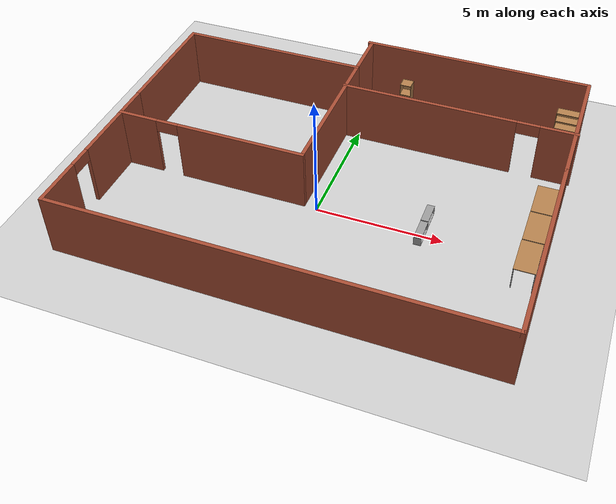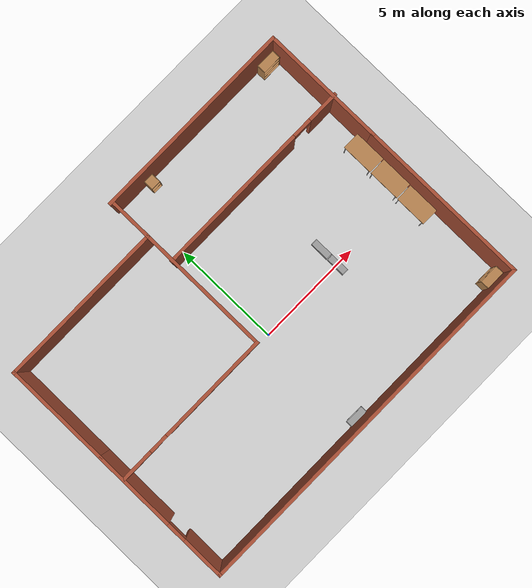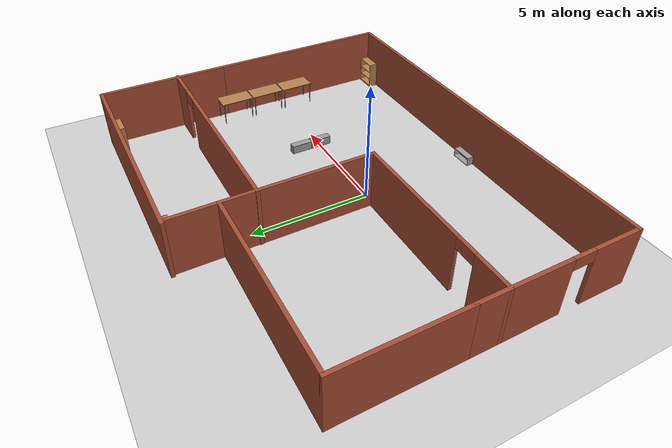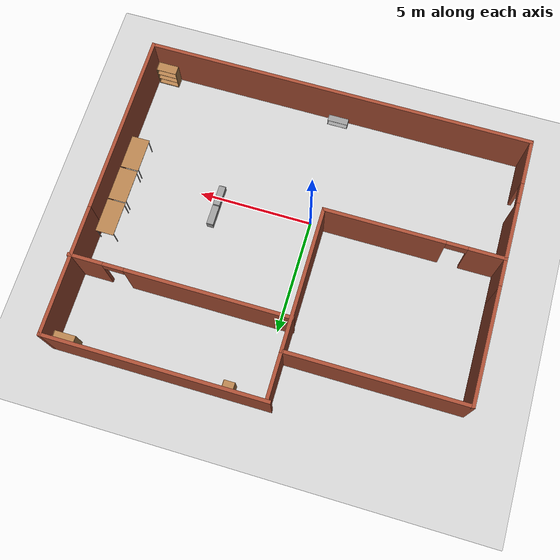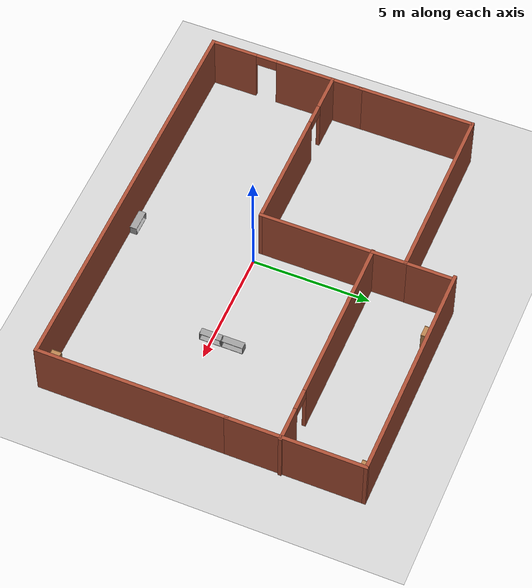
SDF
<sdf version="1.7">
 <world name="default">
  <model name="ground_plane">
   <static>1</static>
   <link name="link">
    <collision name="collision">
     <geometry><plane><normal>0 0 1</normal><size>100 100</size></plane></geometry>
     <surface><friction><ode><mu>100</mu><mu2>50</mu2></ode></friction></surface>
    </collision>
    <visual name="visual">
     <cast_shadows>0</cast_shadows>
     <geometry><plane><normal>0 0 1</normal><size>100 100</size></plane></geometry>
     <material>
      <script><uri>file://media/materials/scripts/gazebo.material</uri><name>Gazebo/Grey</name></script>
     </material>
    </visual>
   </link>
  </model>
  <model name="libraryV3">
   <pose>0.30135 1.47753 0 0 -0 0</pose>
   <link name="Wall_1">
    <pose>-8.45826 -3.425 0 0 -0 -1.5708</pose>
    <visual name="Wall_1_Visual_0">
     <pose>-1.46687 0 1.25 0 -0 0</pose>
     <geometry><box><size>3.81627 0.15 2.5</size></box></geometry>
     <material>
      <script><uri>file://media/materials/scripts/gazebo.material</uri><name>Gazebo/Bricks</name></script>
      <ambient>1 1 1 1</ambient>
     </material>
     <meta><layer>0</layer></meta>
    </visual>
    <collision name="Wall_1_Collision_0">
     <geometry><box><size>3.81627 0.15 2.5</size></box></geometry>
     <pose>-1.46687 0 1.25 0 -0 0</pose>
    </collision>
    <visual name="Wall_1_Visual_1">
     <pose>2.35813 0 1.25 0 -0 0</pose>
     <geometry><box><size>2.03373 0.15 2.5</size></box></geometry>
     <material>
      <script><uri>file://media/materials/scripts/gazebo.material</uri><name>Gazebo/Bricks</name></script>
      <ambient>1 1 1 1</ambient>
     </material>
     <meta><layer>0</layer></meta>
    </visual>
    <collision name="Wall_1_Collision_1">
     <geometry><box><size>2.03373 0.15 2.5</size></box></geometry>
     <pose>2.35813 0 1.25 0 -0 0</pose>
    </collision>
    <visual name="Wall_1_Visual_2">
     <pose>0.891266 0 2.25 0 -0 0</pose>
     <geometry><box><size>0.9 0.15 0.5</size></box></geometry>
     <material>
      <script><uri>file://media/materials/scripts/gazebo.material</uri><name>Gazebo/Bricks</name></script>
      <ambient>1 1 1 1</ambient>
     </material>
     <meta><layer>0</layer></meta>
    </visual>
    <collision name="Wall_1_Collision_2">
     <geometry><box><size>0.9 0.15 0.5</size></box></geometry>
     <pose>0.891266 0 2.25 0 -0 0</pose>
    </collision>
   </link>
   <link name="Wall_11">
    <collision name="Wall_11_Collision">
     <geometry><box><size>5 0.15 2.5</size></box></geometry>
     <pose>0 0 1.25 0 -0 0</pose>
    </collision>
    <visual name="Wall_11_Visual">
     <pose>0 0 1.25 0 -0 0</pose>
     <geometry><box><size>5 0.15 2.5</size></box></geometry>
     <material>
      <script><uri>file://media/materials/scripts/gazebo.material</uri><name>Gazebo/Bricks</name></script>
      <ambient>1 1 1 1</ambient>
     </material>
     <meta><layer>0</layer></meta>
    </visual>
    <pose>-8.45826 2.3 0 0 -0 1.5708</pose>
   </link>
   <link name="Wall_12">
    <collision name="Wall_12_Collision">
     <geometry><box><size>7.75 0.15 2.5</size></box></geometry>
     <pose>0 0 1.25 0 -0 0</pose>
    </collision>
    <visual name="Wall_12_Visual">
     <pose>0 0 1.25 0 -0 0</pose>
     <geometry><box><size>7.75 0.15 2.5</size></box></geometry>
     <material>
      <script><uri>file://media/materials/scripts/gazebo.material</uri><name>Gazebo/Bricks</name></script>
      <ambient>1 1 1 1</ambient>
     </material>
     <meta><layer>0</layer></meta>
    </visual>
    <pose>-4.65826 4.725 0 0 -0 0</pose>
   </link>
   <link name="Wall_14">
    <collision name="Wall_14_Collision">
     <geometry><box><size>2 0.15 2.5</size></box></geometry>
     <pose>0 0 1.25 0 -0 0</pose>
    </collision>
    <visual name="Wall_14_Visual">
     <pose>0 0 1.25 0 -0 0</pose>
     <geometry><box><size>2 0.15 2.5</size></box></geometry>
     <material>
      <script><uri>file://media/materials/scripts/gazebo.material</uri><name>Gazebo/Bricks</name></script>
      <ambient>1 1 1 1</ambient>
     </material>
     <meta><layer>0</layer></meta>
    </visual>
    <pose>-0.858259 5.65 0 0 -0 1.5708</pose>
   </link>
   <link name="Wall_17">
    <collision name="Wall_17_Collision">
     <geometry><box><size>9.5 0.15 2.5</size></box></geometry>
     <pose>0 0 1.25 0 -0 0</pose>
    </collision>
    <visual name="Wall_17_Visual">
     <pose>0 0 1.25 0 -0 0</pose>
     <geometry><box><size>9.5 0.15 2.5</size></box></geometry>
     <material>
      <script><uri>file://media/materials/scripts/gazebo.material</uri><name>Gazebo/Bricks</name></script>
      <ambient>1 1 1 1</ambient>
     </material>
     <meta><layer>0</layer></meta>
    </visual>
    <pose>3.71674 6.725 0 0 -0 3.14159</pose>
   </link>
   <link name="Wall_2">
    <collision name="Wall_2_Collision">
     <geometry><box><size>17 0.15 2.5</size></box></geometry>
     <pose>0 0 1.25 0 -0 0</pose>
    </collision>
    <visual name="Wall_2_Visual">
     <pose>0 0 1.25 0 -0 0</pose>
     <geometry><box><size>17 0.15 2.5</size></box></geometry>
     <material>
      <script><uri>file://media/materials/scripts/gazebo.material</uri><name>Gazebo/Bricks</name></script>
      <ambient>1 1 1 1</ambient>
     </material>
     <meta><layer>0</layer></meta>
    </visual>
    <pose>-0.033259 -6.725 0 0 -0 0</pose>
   </link>
   <link name="Wall_21">
    <collision name="Wall_21_Collision">
     <geometry><box><size>6.25 0.15 2.5</size></box></geometry>
     <pose>0 0 1.25 0 -0 0</pose>
    </collision>
    <visual name="Wall_21_Visual">
     <pose>0 0 1.25 0 -0 0</pose>
     <geometry><box><size>6.25 0.15 2.5</size></box></geometry>
     <material>
      <script><uri>file://media/materials/scripts/gazebo.material</uri><name>Gazebo/Bricks</name></script>
      <ambient>1 1 1 1</ambient>
     </material>
     <meta><layer>0</layer></meta>
    </visual>
    <pose>-0.858259 1.675 0 0 -0 -1.5708</pose>
   </link>
   <link name="Wall_22">
    <pose>-4.65826 -1.375 0 0 -0 3.14159</pose>
    <visual name="Wall_22_Visual_0">
     <pose>-1.26604 0 1.25 0 -0 0</pose>
     <geometry><box><size>5.21792 0.15 2.5</size></box></geometry>
     <material>
      <script><uri>file://media/materials/scripts/gazebo.material</uri><name>Gazebo/Bricks</name></script>
      <ambient>1 1 1 1</ambient>
     </material>
     <meta><layer>0</layer></meta>
    </visual>
    <collision name="Wall_22_Collision_0">
     <geometry><box><size>5.21792 0.15 2.5</size></box></geometry>
     <pose>-1.26604 0 1.25 0 -0 0</pose>
    </collision>
    <visual name="Wall_22_Visual_1">
     <pose>3.05896 0 1.25 0 -0 0</pose>
     <geometry><box><size>1.63208 0.15 2.5</size></box></geometry>
     <material>
      <script><uri>file://media/materials/scripts/gazebo.material</uri><name>Gazebo/Bricks</name></script>
      <ambient>1 1 1 1</ambient>
     </material>
     <meta><layer>0</layer></meta>
    </visual>
    <collision name="Wall_22_Collision_1">
     <geometry><box><size>1.63208 0.15 2.5</size></box></geometry>
     <pose>3.05896 0 1.25 0 -0 0</pose>
    </collision>
    <visual name="Wall_22_Visual_2">
     <pose>1.79292 0 2.25 0 -0 0</pose>
     <geometry><box><size>0.9 0.15 0.5</size></box></geometry>
     <material>
      <script><uri>file://media/materials/scripts/gazebo.material</uri><name>Gazebo/Bricks</name></script>
      <ambient>1 1 1 1</ambient>
     </material>
     <meta><layer>0</layer></meta>
    </visual>
    <collision name="Wall_22_Collision_2">
     <geometry><box><size>0.9 0.15 0.5</size></box></geometry>
     <pose>1.79292 0 2.25 0 -0 0</pose>
    </collision>
   </link>
   <link name="Wall_25">
    <pose>3.78326 3.34459 0 0 -0 0</pose>
    <visual name="Wall_25_Visual_0">
     <pose>-1.20017 0 1.25 0 -0 0</pose>
     <geometry><box><size>7.09966 0.15 2.5</size></box></geometry>
     <material>
      <script><uri>file://media/materials/scripts/gazebo.material</uri><name>Gazebo/Bricks</name></script>
      <ambient>1 1 1 1</ambient>
     </material>
     <meta><layer>0</layer></meta>
    </visual>
    <collision name="Wall_25_Collision_0">
     <geometry><box><size>7.09966 0.15 2.5</size></box></geometry>
     <pose>-1.20017 0 1.25 0 -0 0</pose>
    </collision>
    <visual name="Wall_25_Visual_1">
     <pose>3.99983 0 1.25 0 -0 0</pose>
     <geometry><box><size>1.50035 0.15 2.5</size></box></geometry>
     <material>
      <script><uri>file://media/materials/scripts/gazebo.material</uri><name>Gazebo/Bricks</name></script>
      <ambient>1 1 1 1</ambient>
     </material>
     <meta><layer>0</layer></meta>
    </visual>
    <collision name="Wall_25_Collision_1">
     <geometry><box><size>1.50035 0.15 2.5</size></box></geometry>
     <pose>3.99983 0 1.25 0 -0 0</pose>
    </collision>
    <visual name="Wall_25_Visual_2">
     <pose>2.79966 0 2.25 0 -0 0</pose>
     <geometry><box><size>0.9 0.15 0.5</size></box></geometry>
     <material>
      <script><uri>file://media/materials/scripts/gazebo.material</uri><name>Gazebo/Bricks</name></script>
      <ambient>1 1 1 1</ambient>
     </material>
     <meta><layer>0</layer></meta>
    </visual>
    <collision name="Wall_25_Collision_2">
     <geometry><box><size>0.9 0.15 0.5</size></box></geometry>
     <pose>2.79966 0 2.25 0 -0 0</pose>
    </collision>
   </link>
   <link name="Wall_4">
    <collision name="Wall_4_Collision">
     <geometry><box><size>8 0.15 2.5</size></box></geometry>
     <pose>0 0 1.25 0 -0 0</pose>
    </collision>
    <visual name="Wall_4_Visual">
     <pose>0 0 1.25 0 -0 0</pose>
     <geometry><box><size>8 0.15 2.5</size></box></geometry>
     <material>
      <script><uri>file://media/materials/scripts/gazebo.material</uri><name>Gazebo/Bricks</name></script>
      <ambient>1 1 1 1</ambient>
     </material>
     <meta><layer>0</layer></meta>
    </visual>
    <pose>8.39174 -2.8 0 0 -0 1.5708</pose>
   </link>
   <link name="Wall_6">
    <collision name="Wall_6_Collision">
     <geometry><box><size>5.75 0.15 2.5</size></box></geometry>
     <pose>0 0 1.25 0 -0 0</pose>
    </collision>
    <visual name="Wall_6_Visual">
     <pose>0 0 1.25 0 -0 0</pose>
     <geometry><box><size>5.75 0.15 2.5</size></box></geometry>
     <material>
      <script><uri>file://media/materials/scripts/gazebo.material</uri><name>Gazebo/Bricks</name></script>
      <ambient>1 1 1 1</ambient>
     </material>
     <meta><layer>0</layer></meta>
    </visual>
    <pose>8.39174 3.925 0 0 -0 1.5708</pose>
   </link>
   <static>1</static>
  </model>
  <model name="cabinet_clone_0">
   <static>1</static>
   <link name="cabinet_bottom_plate">
    <inertial>
     <pose>0 0 -1 0 -0 0</pose>
     <inertia><ixx>2.05</ixx><ixy>0</ixy><ixz>0</ixz><iyy>2.05</iyy><iyz>0</iyz><izz>2.05</izz></inertia>
     <mass>25</mass>
    </inertial>
    <collision name="cabinet_bottom_plate_geom">
     <pose>0 0 0.01 0 -0 0</pose>
     <geometry><box><size>0.45 0.45 0.02</size></box></geometry>
    </collision>
    <visual name="cabinet_bottom_plate_geom_visual">
     <pose>0 0 0.01 0 -0 0</pose>
     <geometry><box><size>0.45 0.45 0.02</size></box></geometry>
     <material>
      <script><uri>file://media/materials/scripts/gazebo.material</uri><name>Gazebo/Wood</name></script>
     </material>
    </visual>
    <collision name="cabinet_bottom_plate_geom_cabinet_back_plate">
     <pose>0.235 0 0.51 0 -0 0</pose>
     <geometry><box><size>0.02 0.45 1.02</size></box></geometry>
    </collision>
    <visual name="cabinet_bottom_plate_geom_cabinet_back_plate_visual">
     <pose>0.235 0 0.51 0 -0 0</pose>
     <geometry><box><size>0.02 0.45 1.02</size></box></geometry>
     <material>
      <script><uri>file://media/materials/scripts/gazebo.material</uri><name>Gazebo/Wood</name></script>
     </material>
    </visual>
    <collision name="cabinet_bottom_plate_geom_cabinet_left_plate">
     <pose>0 0.235 0.51 0 -0 0</pose>
     <geometry><box><size>0.45 0.02 1.02</size></box></geometry>
    </collision>
    <visual name="cabinet_bottom_plate_geom_cabinet_left_plate_visual">
     <pose>0 0.235 0.51 0 -0 0</pose>
     <geometry><box><size>0.45 0.02 1.02</size></box></geometry>
     <material>
      <script><uri>file://media/materials/scripts/gazebo.material</uri><name>Gazebo/Wood</name></script>
     </material>
    </visual>
    <collision name="cabinet_bottom_plate_geom_cabinet_middle_plate">
     <pose>0 0 0.51 0 -0 0</pose>
     <geometry><box><size>0.45 0.45 0.02</size></box></geometry>
    </collision>
    <visual name="cabinet_bottom_plate_geom_cabinet_middle_plate_visual">
     <pose>0 0 0.51 0 -0 0</pose>
     <geometry><box><size>0.45 0.45 0.02</size></box></geometry>
     <material>
      <script><uri>file://media/materials/scripts/gazebo.material</uri><name>Gazebo/Wood</name></script>
     </material>
    </visual>
    <collision name="cabinet_bottom_plate_geom_cabinet_right_plate">
     <pose>0 -0.235 0.51 0 -0 0</pose>
     <geometry><box><size>0.45 0.02 1.02</size></box></geometry>
    </collision>
    <visual name="cabinet_bottom_plate_geom_cabinet_right_plate_visual">
     <pose>0 -0.235 0.51 0 -0 0</pose>
     <geometry><box><size>0.45 0.02 1.02</size></box></geometry>
     <material>
      <script><uri>file://media/materials/scripts/gazebo.material</uri><name>Gazebo/Wood</name></script>
     </material>
    </visual>
    <collision name="cabinet_bottom_plate_geom_cabinet_top_plate">
     <pose>0 0 1.01 0 -0 0</pose>
     <geometry><box><size>0.45 0.45 0.02</size></box></geometry>
    </collision>
    <visual name="cabinet_bottom_plate_geom_cabinet_top_plate_visual">
     <pose>0 0 1.01 0 -0 0</pose>
     <geometry><box><size>0.45 0.45 0.02</size></box></geometry>
     <material>
      <script><uri>file://media/materials/scripts/gazebo.material</uri><name>Gazebo/Wood</name></script>
     </material>
    </visual>
   </link>
   <pose>1.18529 7.88915 0 0 -0 1.5679</pose>
  </model>
  <model name="bookshelf_0">
   <static>1</static>
   <link name="link">
    <inertial><mass>1</mass></inertial>
    <collision name="back">
     <pose>0 0.005 0.6 0 -0 0</pose>
     <geometry><box><size>0.9 0.01 1.2</size></box></geometry>
    </collision>
    <visual name="visual1">
     <pose>0 0.005 0.6 0 -0 0</pose>
     <geometry><box><size>0.9 0.01 1.2</size></box></geometry>
     <material>
      <script><uri>file://media/materials/scripts/gazebo.material</uri><name>Gazebo/Wood</name></script>
     </material>
    </visual>
    <collision name="left_side">
     <pose>0.45 -0.195 0.6 0 -0 0</pose>
     <geometry><box><size>0.02 0.4 1.2</size></box></geometry>
    </collision>
    <visual name="visual2">
     <pose>0.45 -0.195 0.6 0 -0 0</pose>
     <geometry><box><size>0.02 0.4 1.2</size></box></geometry>
     <material>
      <script><uri>file://media/materials/scripts/gazebo.material</uri><name>Gazebo/Wood</name></script>
     </material>
    </visual>
    <collision name="right_side">
     <pose>-0.45 -0.195 0.6 0 -0 0</pose>
     <geometry><box><size>0.02 0.4 1.2</size></box></geometry>
    </collision>
    <visual name="visual3">
     <pose>-0.45 -0.195 0.6 0 -0 0</pose>
     <geometry><box><size>0.02 0.4 1.2</size></box></geometry>
     <material>
      <script><uri>file://media/materials/scripts/gazebo.material</uri><name>Gazebo/Wood</name></script>
     </material>
    </visual>
    <collision name="bottom">
     <pose>0 -0.195 0.03 0 -0 0</pose>
     <geometry><box><size>0.88 0.4 0.06</size></box></geometry>
    </collision>
    <visual name="visual4">
     <pose>0 -0.195 0.03 0 -0 0</pose>
     <geometry><box><size>0.88 0.4 0.06</size></box></geometry>
     <material>
      <script><uri>file://media/materials/scripts/gazebo.material</uri><name>Gazebo/Wood</name></script>
     </material>
    </visual>
    <collision name="top">
     <pose>0 -0.195 1.19 0 -0 0</pose>
     <geometry><box><size>0.88 0.4 0.02</size></box></geometry>
    </collision>
    <visual name="visual5">
     <pose>0 -0.195 1.19 0 -0 0</pose>
     <geometry><box><size>0.88 0.4 0.02</size></box></geometry>
     <material>
      <script><uri>file://media/materials/scripts/gazebo.material</uri><name>Gazebo/Wood</name></script>
     </material>
    </visual>
    <collision name="low_shelf">
     <pose>0 -0.195 0.43 0 -0 0</pose>
     <geometry><box><size>0.88 0.4 0.02</size></box></geometry>
    </collision>
    <visual name="visual6">
     <pose>0 -0.195 0.43 0 -0 0</pose>
     <geometry><box><size>0.88 0.4 0.02</size></box></geometry>
     <material>
      <script><uri>file://media/materials/scripts/gazebo.material</uri><name>Gazebo/Wood</name></script>
     </material>
    </visual>
    <collision name="high_shelf">
     <pose>0 -0.195 0.8 0 -0 0</pose>
     <geometry><box><size>0.88 0.4 0.02</size></box></geometry>
    </collision>
    <visual name="visual7">
     <pose>0 -0.195 0.8 0 -0 0</pose>
     <geometry><box><size>0.88 0.4 0.02</size></box></geometry>
     <material>
      <script><uri>file://media/materials/scripts/gazebo.material</uri><name>Gazebo/Wood</name></script>
     </material>
    </visual>
   </link>
   <pose>8.13394 8.0941 0 0 -0 0</pose>
  </model>
  <model name="bookshelf_2">
   <static>1</static>
   <link name="link">
    <inertial><mass>1</mass></inertial>
    <collision name="back">
     <pose>0 0.005 0.6 0 -0 0</pose>
     <geometry><box><size>0.9 0.01 1.2</size></box></geometry>
    </collision>
    <visual name="visual1">
     <pose>0 0.005 0.6 0 -0 0</pose>
     <geometry><box><size>0.9 0.01 1.2</size></box></geometry>
     <material>
      <script><uri>file://media/materials/scripts/gazebo.material</uri><name>Gazebo/Wood</name></script>
     </material>
    </visual>
    <collision name="left_side">
     <pose>0.45 -0.195 0.6 0 -0 0</pose>
     <geometry><box><size>0.02 0.4 1.2</size></box></geometry>
    </collision>
    <visual name="visual2">
     <pose>0.45 -0.195 0.6 0 -0 0</pose>
     <geometry><box><size>0.02 0.4 1.2</size></box></geometry>
     <material>
      <script><uri>file://media/materials/scripts/gazebo.material</uri><name>Gazebo/Wood</name></script>
     </material>
    </visual>
    <collision name="right_side">
     <pose>-0.45 -0.195 0.6 0 -0 0</pose>
     <geometry><box><size>0.02 0.4 1.2</size></box></geometry>
    </collision>
    <visual name="visual3">
     <pose>-0.45 -0.195 0.6 0 -0 0</pose>
     <geometry><box><size>0.02 0.4 1.2</size></box></geometry>
     <material>
      <script><uri>file://media/materials/scripts/gazebo.material</uri><name>Gazebo/Wood</name></script>
     </material>
    </visual>
    <collision name="bottom">
     <pose>0 -0.195 0.03 0 -0 0</pose>
     <geometry><box><size>0.88 0.4 0.06</size></box></geometry>
    </collision>
    <visual name="visual4">
     <pose>0 -0.195 0.03 0 -0 0</pose>
     <geometry><box><size>0.88 0.4 0.06</size></box></geometry>
     <material>
      <script><uri>file://media/materials/scripts/gazebo.material</uri><name>Gazebo/Wood</name></script>
     </material>
    </visual>
    <collision name="top">
     <pose>0 -0.195 1.19 0 -0 0</pose>
     <geometry><box><size>0.88 0.4 0.02</size></box></geometry>
    </collision>
    <visual name="visual5">
     <pose>0 -0.195 1.19 0 -0 0</pose>
     <geometry><box><size>0.88 0.4 0.02</size></box></geometry>
     <material>
      <script><uri>file://media/materials/scripts/gazebo.material</uri><name>Gazebo/Wood</name></script>
     </material>
    </visual>
    <collision name="low_shelf">
     <pose>0 -0.195 0.43 0 -0 0</pose>
     <geometry><box><size>0.88 0.4 0.02</size></box></geometry>
    </collision>
    <visual name="visual6">
     <pose>0 -0.195 0.43 0 -0 0</pose>
     <geometry><box><size>0.88 0.4 0.02</size></box></geometry>
     <material>
      <script><uri>file://media/materials/scripts/gazebo.material</uri><name>Gazebo/Wood</name></script>
     </material>
    </visual>
    <collision name="high_shelf">
     <pose>0 -0.195 0.8 0 -0 0</pose>
     <geometry><box><size>0.88 0.4 0.02</size></box></geometry>
    </collision>
    <visual name="visual7">
     <pose>0 -0.195 0.8 0 -0 0</pose>
     <geometry><box><size>0.88 0.4 0.02</size></box></geometry>
     <material>
      <script><uri>file://media/materials/scripts/gazebo.material</uri><name>Gazebo/Wood</name></script>
     </material>
    </visual>
   </link>
   <pose>8.12429 -5.14453 0 0 -0 3.14119</pose>
  </model>
  <model name="table">
   <static>1</static>
   <link name="link">
    <collision name="surface">
     <pose>0 0 1 0 -0 0</pose>
     <geometry><box><size>1.5 0.8 0.03</size></box></geometry>
     <surface><friction><ode><mu>0.6</mu><mu2>0.6</mu2></ode></friction></surface>
    </collision>
    <visual name="visual1">
     <pose>0 0 1 0 -0 0</pose>
     <geometry><box><size>1.5 0.8 0.03</size></box></geometry>
     <material>
      <script><uri>file://media/materials/scripts/gazebo.material</uri><name>Gazebo/Wood</name></script>
     </material>
    </visual>
    <collision name="front_left_leg">
     <pose>0.68 0.38 0.5 0 -0 0</pose>
     <geometry><cylinder><radius>0.02</radius><length>1</length></cylinder></geometry>
    </collision>
    <visual name="front_left_leg">
     <pose>0.68 0.38 0.5 0 -0 0</pose>
     <geometry><cylinder><radius>0.02</radius><length>1</length></cylinder></geometry>
     <material>
      <script><uri>file://media/materials/scripts/gazebo.material</uri><name>Gazebo/Grey</name></script>
     </material>
    </visual>
    <collision name="front_right_leg">
     <pose>0.68 -0.38 0.5 0 -0 0</pose>
     <geometry><cylinder><radius>0.02</radius><length>1</length></cylinder></geometry>
    </collision>
    <visual name="front_right_leg">
     <pose>0.68 -0.38 0.5 0 -0 0</pose>
     <geometry><cylinder><radius>0.02</radius><length>1</length></cylinder></geometry>
     <material>
      <script><uri>file://media/materials/scripts/gazebo.material</uri><name>Gazebo/Grey</name></script>
     </material>
    </visual>
    <collision name="back_right_leg">
     <pose>-0.68 -0.38 0.5 0 -0 0</pose>
     <geometry><cylinder><radius>0.02</radius><length>1</length></cylinder></geometry>
    </collision>
    <visual name="back_right_leg">
     <pose>-0.68 -0.38 0.5 0 -0 0</pose>
     <geometry><cylinder><radius>0.02</radius><length>1</length></cylinder></geometry>
     <material>
      <script><uri>file://media/materials/scripts/gazebo.material</uri><name>Gazebo/Grey</name></script>
     </material>
    </visual>
    <collision name="back_left_leg">
     <pose>-0.68 0.38 0.5 0 -0 0</pose>
     <geometry><cylinder><radius>0.02</radius><length>1</length></cylinder></geometry>
    </collision>
    <visual name="back_left_leg">
     <pose>-0.68 0.38 0.5 0 -0 0</pose>
     <geometry><cylinder><radius>0.02</radius><length>1</length></cylinder></geometry>
     <material>
      <script><uri>file://media/materials/scripts/gazebo.material</uri><name>Gazebo/Grey</name></script>
     </material>
    </visual>
   </link>
   <pose>8.17833 2.42694 0 0 -0 1.57073</pose>
  </model>
  <model name="table_clone">
   <static>1</static>
   <link name="link">
    <collision name="surface">
     <pose>0 0 1 0 -0 0</pose>
     <geometry><box><size>1.5 0.8 0.03</size></box></geometry>
     <surface><friction><ode><mu>0.6</mu><mu2>0.6</mu2></ode></friction></surface>
    </collision>
    <visual name="visual1">
     <pose>0 0 1 0 -0 0</pose>
     <geometry><box><size>1.5 0.8 0.03</size></box></geometry>
     <material>
      <script><uri>file://media/materials/scripts/gazebo.material</uri><name>Gazebo/Wood</name></script>
     </material>
    </visual>
    <collision name="front_left_leg">
     <pose>0.68 0.38 0.5 0 -0 0</pose>
     <geometry><cylinder><radius>0.02</radius><length>1</length></cylinder></geometry>
    </collision>
    <visual name="front_left_leg">
     <pose>0.68 0.38 0.5 0 -0 0</pose>
     <geometry><cylinder><radius>0.02</radius><length>1</length></cylinder></geometry>
     <material>
      <script><uri>file://media/materials/scripts/gazebo.material</uri><name>Gazebo/Grey</name></script>
     </material>
    </visual>
    <collision name="front_right_leg">
     <pose>0.68 -0.38 0.5 0 -0 0</pose>
     <geometry><cylinder><radius>0.02</radius><length>1</length></cylinder></geometry>
    </collision>
    <visual name="front_right_leg">
     <pose>0.68 -0.38 0.5 0 -0 0</pose>
     <geometry><cylinder><radius>0.02</radius><length>1</length></cylinder></geometry>
     <material>
      <script><uri>file://media/materials/scripts/gazebo.material</uri><name>Gazebo/Grey</name></script>
     </material>
    </visual>
    <collision name="back_right_leg">
     <pose>-0.68 -0.38 0.5 0 -0 0</pose>
     <geometry><cylinder><radius>0.02</radius><length>1</length></cylinder></geometry>
    </collision>
    <visual name="back_right_leg">
     <pose>-0.68 -0.38 0.5 0 -0 0</pose>
     <geometry><cylinder><radius>0.02</radius><length>1</length></cylinder></geometry>
     <material>
      <script><uri>file://media/materials/scripts/gazebo.material</uri><name>Gazebo/Grey</name></script>
     </material>
    </visual>
    <collision name="back_left_leg">
     <pose>-0.68 0.38 0.5 0 -0 0</pose>
     <geometry><cylinder><radius>0.02</radius><length>1</length></cylinder></geometry>
    </collision>
    <visual name="back_left_leg">
     <pose>-0.68 0.38 0.5 0 -0 0</pose>
     <geometry><cylinder><radius>0.02</radius><length>1</length></cylinder></geometry>
     <material>
      <script><uri>file://media/materials/scripts/gazebo.material</uri><name>Gazebo/Grey</name></script>
     </material>
    </visual>
   </link>
   <pose>8.17555 0.889376 0 0 -0 1.57073</pose>
  </model>
  <model name="table_clone_0">
   <static>1</static>
   <link name="link">
    <collision name="surface">
     <pose>0 0 1 0 -0 0</pose>
     <geometry><box><size>1.5 0.8 0.03</size></box></geometry>
     <surface><friction><ode><mu>0.6</mu><mu2>0.6</mu2></ode></friction></surface>
    </collision>
    <visual name="visual1">
     <pose>0 0 1 0 -0 0</pose>
     <geometry><box><size>1.5 0.8 0.03</size></box></geometry>
     <material>
      <script><uri>file://media/materials/scripts/gazebo.material</uri><name>Gazebo/Wood</name></script>
     </material>
    </visual>
    <collision name="front_left_leg">
     <pose>0.68 0.38 0.5 0 -0 0</pose>
     <geometry><cylinder><radius>0.02</radius><length>1</length></cylinder></geometry>
    </collision>
    <visual name="front_left_leg">
     <pose>0.68 0.38 0.5 0 -0 0</pose>
     <geometry><cylinder><radius>0.02</radius><length>1</length></cylinder></geometry>
     <material>
      <script><uri>file://media/materials/scripts/gazebo.material</uri><name>Gazebo/Grey</name></script>
     </material>
    </visual>
    <collision name="front_right_leg">
     <pose>0.68 -0.38 0.5 0 -0 0</pose>
     <geometry><cylinder><radius>0.02</radius><length>1</length></cylinder></geometry>
    </collision>
    <visual name="front_right_leg">
     <pose>0.68 -0.38 0.5 0 -0 0</pose>
     <geometry><cylinder><radius>0.02</radius><length>1</length></cylinder></geometry>
     <material>
      <script><uri>file://media/materials/scripts/gazebo.material</uri><name>Gazebo/Grey</name></script>
     </material>
    </visual>
    <collision name="back_right_leg">
     <pose>-0.68 -0.38 0.5 0 -0 0</pose>
     <geometry><cylinder><radius>0.02</radius><length>1</length></cylinder></geometry>
    </collision>
    <visual name="back_right_leg">
     <pose>-0.68 -0.38 0.5 0 -0 0</pose>
     <geometry><cylinder><radius>0.02</radius><length>1</length></cylinder></geometry>
     <material>
      <script><uri>file://media/materials/scripts/gazebo.material</uri><name>Gazebo/Grey</name></script>
     </material>
    </visual>
    <collision name="back_left_leg">
     <pose>-0.68 0.38 0.5 0 -0 0</pose>
     <geometry><cylinder><radius>0.02</radius><length>1</length></cylinder></geometry>
    </collision>
    <visual name="back_left_leg">
     <pose>-0.68 0.38 0.5 0 -0 0</pose>
     <geometry><cylinder><radius>0.02</radius><length>1</length></cylinder></geometry>
     <material>
      <script><uri>file://media/materials/scripts/gazebo.material</uri><name>Gazebo/Grey</name></script>
     </material>
    </visual>
   </link>
   <pose>8.16358 -0.65173 0 0 -0 1.57073</pose>
  </model>
  <model name="Wall_Cabinet_36x15W">
   <link name="Wall_0">
    <pose>0 0 0.01 0 -0 0</pose>
    <inertial>
     <mass>1.9796</mass>
     <inertia><ixx>0.0145</ixx><iyy>0.1511</iyy><izz>0.1367</izz><ixy>0</ixy><ixz>0</ixz><iyz>0</iyz></inertia>
    </inertial>
    <collision name="Wall_0_Collision"><geometry><box><size>0.91 0.296 0.02</size></box></geometry></collision>
    <visual name="Wall_0_Visual">
     <geometry><box><size>0.91 0.296 0.02</size></box></geometry>
     <material>
      <script><uri>file://media/materials/scripts/gazebo.material</uri><name>Gazebo/Grey</name></script>
      <ambient>1 1 1 1</ambient>
     </material>
    </visual>
   </link>
   <joint name="0_2" type="fixed">
    <pose>-0.455 0 0 0 -0 0</pose>
    <parent>Wall_2</parent>
    <child>Wall_0</child>
    <axis><xyz>0 0 1</xyz><limit><lower>-1e+16</lower><upper>1e+16</upper></limit></axis>
   </joint>
   <joint name="0_4" type="fixed">
    <pose>0.455 0 0 0 -0 0</pose>
    <parent>Wall_4</parent>
    <child>Wall_0</child>
    <axis><xyz>0 0 1</xyz><limit><lower>-1e+16</lower><upper>1e+16</upper></limit></axis>
   </joint>
   <joint name="0_8" type="fixed">
    <pose>0 -0.148 0 0 -0 0</pose>
    <parent>Wall_8</parent>
    <child>Wall_0</child>
    <axis><xyz>0 0 1</xyz><limit><lower>-1e+16</lower><upper>1e+16</upper></limit></axis>
   </joint>
   <link name="Wall_2">
    <pose>-0.445 0 0.192 0 -0 0</pose>
    <inertial>
     <mass>0.8353</mass>
     <inertia><ixx>0.0061</ixx><iyy>0.0164</iyy><izz>0.0103</izz><ixy>0</ixy><ixz>0</ixz><iyz>0</iyz></inertia>
    </inertial>
    <collision name="Wall_2_Collision"><geometry><box><size>0.02 0.296 0.384</size></box></geometry></collision>
    <visual name="Wall_2_Visual">
     <geometry><box><size>0.02 0.296 0.384</size></box></geometry>
     <material>
      <script><uri>file://media/materials/scripts/gazebo.material</uri><name>Gazebo/Grey</name></script>
      <ambient>1 1 1 1</ambient>
     </material>
    </visual>
   </link>
   <link name="Wall_4">
    <pose>0.445 0 0.192 0 -0 0</pose>
    <inertial>
     <mass>0.8353</mass>
     <inertia><ixx>0.0061</ixx><iyy>0.0164</iyy><izz>0.0103</izz><ixy>0</ixy><ixz>0</ixz><iyz>0</iyz></inertia>
    </inertial>
    <collision name="Wall_4_Collision"><geometry><box><size>0.02 0.296 0.384</size></box></geometry></collision>
    <visual name="Wall_4_Visual">
     <geometry><box><size>0.02 0.296 0.384</size></box></geometry>
     <material>
      <script><uri>file://media/materials/scripts/gazebo.material</uri><name>Gazebo/Grey</name></script>
      <ambient>1 1 1 1</ambient>
     </material>
    </visual>
   </link>
   <link name="Wall_6">
    <pose>0 0 0.374 0 -0 0</pose>
    <inertial>
     <mass>1.9796</mass>
     <inertia><ixx>0.0145</ixx><iyy>0.1511</iyy><izz>0.1367</izz><ixy>0</ixy><ixz>0</ixz><iyz>0</iyz></inertia>
    </inertial>
    <collision name="Wall_6_Collision"><geometry><box><size>0.91 0.296 0.02</size></box></geometry></collision>
    <visual name="Wall_6_Visual">
     <geometry><box><size>0.91 0.296 0.02</size></box></geometry>
     <material>
      <script><uri>file://media/materials/scripts/gazebo.material</uri><name>Gazebo/Grey</name></script>
      <ambient>1 1 1 1</ambient>
     </material>
    </visual>
   </link>
   <joint name="6_2" type="fixed">
    <pose>-0.455 0 0 0 -0 0</pose>
    <parent>Wall_2</parent>
    <child>Wall_6</child>
    <axis><xyz>0 0 1</xyz><limit><lower>-1e+16</lower><upper>1e+16</upper></limit></axis>
   </joint>
   <joint name="6_4" type="fixed">
    <pose>0.455 0 0 0 -0 0</pose>
    <parent>Wall_4</parent>
    <child>Wall_6</child>
    <axis><xyz>0 0 1</xyz><limit><lower>-1e+16</lower><upper>1e+16</upper></limit></axis>
   </joint>
   <joint name="6_8" type="fixed">
    <pose>0 -0.148 0 0 -0 0</pose>
    <parent>Wall_8</parent>
    <child>Wall_6</child>
    <axis><xyz>0 0 1</xyz><limit><lower>-1e+16</lower><upper>1e+16</upper></limit></axis>
   </joint>
   <link name="Wall_8">
    <pose>0 -0.138 0.19 0 -0 0</pose>
    <inertial>
     <mass>2.5302</mass>
     <inertia><ixx>0.0305</ixx><iyy>0.1732</iyy><izz>0.2035</izz><ixy>0</ixy><ixz>0</ixz><iyz>0</iyz></inertia>
    </inertial>
    <collision name="Wall_8_Collision"><geometry><box><size>0.906 0.02 0.38</size></box></geometry></collision>
    <visual name="Wall_8_Visual">
     <geometry><box><size>0.906 0.02 0.38</size></box></geometry>
     <material>
      <script><uri>file://media/materials/scripts/gazebo.material</uri><name>Gazebo/Grey</name></script>
      <ambient>1 1 1 1</ambient>
     </material>
    </visual>
   </link>
   <joint name="8_2" type="fixed">
    <pose>-0.453 0 0 0 -0 0</pose>
    <parent>Wall_2</parent>
    <child>Wall_8</child>
    <axis><xyz>0 1 0</xyz><limit><lower>-1e+16</lower><upper>1e+16</upper></limit></axis>
   </joint>
   <joint name="8_4" type="fixed">
    <pose>0.453 0 0 0 -0 0</pose>
    <parent>Wall_4</parent>
    <child>Wall_8</child>
    <axis><xyz>0 1 0</xyz><limit><lower>-1e+16</lower><upper>1e+16</upper></limit></axis>
   </joint>
   <static>1</static>
   <pose>0.124103 -5.01216 0 0 -0 0</pose>
  </model>
  <model name="Wall_Cabinet_36x15W_0">
   <link name="Wall_0">
    <pose>0 0 0.01 0 -0 0</pose>
    <inertial>
     <mass>1.9796</mass>
     <inertia><ixx>0.0145</ixx><iyy>0.1511</iyy><izz>0.1367</izz><ixy>0</ixy><ixz>0</ixz><iyz>0</iyz></inertia>
    </inertial>
    <collision name="Wall_0_Collision"><geometry><box><size>0.91 0.296 0.02</size></box></geometry></collision>
    <visual name="Wall_0_Visual">
     <geometry><box><size>0.91 0.296 0.02</size></box></geometry>
     <material>
      <script><uri>file://media/materials/scripts/gazebo.material</uri><name>Gazebo/Grey</name></script>
      <ambient>1 1 1 1</ambient>
     </material>
    </visual>
   </link>
   <joint name="0_2" type="fixed">
    <pose>-0.455 0 0 0 -0 0</pose>
    <parent>Wall_2</parent>
    <child>Wall_0</child>
    <axis><xyz>0 0 1</xyz><limit><lower>-1e+16</lower><upper>1e+16</upper></limit></axis>
   </joint>
   <joint name="0_4" type="fixed">
    <pose>0.455 0 0 0 -0 0</pose>
    <parent>Wall_4</parent>
    <child>Wall_0</child>
    <axis><xyz>0 0 1</xyz><limit><lower>-1e+16</lower><upper>1e+16</upper></limit></axis>
   </joint>
   <joint name="0_8" type="fixed">
    <pose>0 -0.148 0 0 -0 0</pose>
    <parent>Wall_8</parent>
    <child>Wall_0</child>
    <axis><xyz>0 0 1</xyz><limit><lower>-1e+16</lower><upper>1e+16</upper></limit></axis>
   </joint>
   <link name="Wall_2">
    <pose>-0.445 0 0.192 0 -0 0</pose>
    <inertial>
     <mass>0.8353</mass>
     <inertia><ixx>0.0061</ixx><iyy>0.0164</iyy><izz>0.0103</izz><ixy>0</ixy><ixz>0</ixz><iyz>0</iyz></inertia>
    </inertial>
    <collision name="Wall_2_Collision"><geometry><box><size>0.02 0.296 0.384</size></box></geometry></collision>
    <visual name="Wall_2_Visual">
     <geometry><box><size>0.02 0.296 0.384</size></box></geometry>
     <material>
      <script><uri>file://media/materials/scripts/gazebo.material</uri><name>Gazebo/Grey</name></script>
      <ambient>1 1 1 1</ambient>
     </material>
    </visual>
   </link>
   <link name="Wall_4">
    <pose>0.445 0 0.192 0 -0 0</pose>
    <inertial>
     <mass>0.8353</mass>
     <inertia><ixx>0.0061</ixx><iyy>0.0164</iyy><izz>0.0103</izz><ixy>0</ixy><ixz>0</ixz><iyz>0</iyz></inertia>
    </inertial>
    <collision name="Wall_4_Collision"><geometry><box><size>0.02 0.296 0.384</size></box></geometry></collision>
    <visual name="Wall_4_Visual">
     <geometry><box><size>0.02 0.296 0.384</size></box></geometry>
     <material>
      <script><uri>file://media/materials/scripts/gazebo.material</uri><name>Gazebo/Grey</name></script>
      <ambient>1 1 1 1</ambient>
     </material>
    </visual>
   </link>
   <link name="Wall_6">
    <pose>0 0 0.374 0 -0 0</pose>
    <inertial>
     <mass>1.9796</mass>
     <inertia><ixx>0.0145</ixx><iyy>0.1511</iyy><izz>0.1367</izz><ixy>0</ixy><ixz>0</ixz><iyz>0</iyz></inertia>
    </inertial>
    <collision name="Wall_6_Collision"><geometry><box><size>0.91 0.296 0.02</size></box></geometry></collision>
    <visual name="Wall_6_Visual">
     <geometry><box><size>0.91 0.296 0.02</size></box></geometry>
     <material>
      <script><uri>file://media/materials/scripts/gazebo.material</uri><name>Gazebo/Grey</name></script>
      <ambient>1 1 1 1</ambient>
     </material>
    </visual>
   </link>
   <joint name="6_2" type="fixed">
    <pose>-0.455 0 0 0 -0 0</pose>
    <parent>Wall_2</parent>
    <child>Wall_6</child>
    <axis><xyz>0 0 1</xyz><limit><lower>-1e+16</lower><upper>1e+16</upper></limit></axis>
   </joint>
   <joint name="6_4" type="fixed">
    <pose>0.455 0 0 0 -0 0</pose>
    <parent>Wall_4</parent>
    <child>Wall_6</child>
    <axis><xyz>0 0 1</xyz><limit><lower>-1e+16</lower><upper>1e+16</upper></limit></axis>
   </joint>
   <joint name="6_8" type="fixed">
    <pose>0 -0.148 0 0 -0 0</pose>
    <parent>Wall_8</parent>
    <child>Wall_6</child>
    <axis><xyz>0 0 1</xyz><limit><lower>-1e+16</lower><upper>1e+16</upper></limit></axis>
   </joint>
   <link name="Wall_8">
    <pose>0 -0.138 0.19 0 -0 0</pose>
    <inertial>
     <mass>2.5302</mass>
     <inertia><ixx>0.0305</ixx><iyy>0.1732</iyy><izz>0.2035</izz><ixy>0</ixy><ixz>0</ixz><iyz>0</iyz></inertia>
    </inertial>
    <collision name="Wall_8_Collision"><geometry><box><size>0.906 0.02 0.38</size></box></geometry></collision>
    <visual name="Wall_8_Visual">
     <geometry><box><size>0.906 0.02 0.38</size></box></geometry>
     <material>
      <script><uri>file://media/materials/scripts/gazebo.material</uri><name>Gazebo/Grey</name></script>
      <ambient>1 1 1 1</ambient>
     </material>
    </visual>
   </link>
   <joint name="8_2" type="fixed">
    <pose>-0.453 0 0 0 -0 0</pose>
    <parent>Wall_2</parent>
    <child>Wall_8</child>
    <axis><xyz>0 1 0</xyz><limit><lower>-1e+16</lower><upper>1e+16</upper></limit></axis>
   </joint>
   <joint name="8_4" type="fixed">
    <pose>0.453 0 0 0 -0 0</pose>
    <parent>Wall_4</parent>
    <child>Wall_8</child>
    <axis><xyz>0 1 0</xyz><limit><lower>-1e+16</lower><upper>1e+16</upper></limit></axis>
   </joint>
   <static>1</static>
   <pose>4.14825 -0.024816 0 0 0 -1.57382</pose>
  </model>
  <model name="Wall_Cabinet_36x15W_0_clone">
   <link name="Wall_0">
    <pose>0 0 0.01 0 -0 0</pose>
    <inertial>
     <mass>1.9796</mass>
     <inertia><ixx>0.0145</ixx><iyy>0.1511</iyy><izz>0.1367</izz><ixy>0</ixy><ixz>0</ixz><iyz>0</iyz></inertia>
    </inertial>
    <collision name="Wall_0_Collision"><geometry><box><size>0.91 0.296 0.02</size></box></geometry></collision>
    <visual name="Wall_0_Visual">
     <geometry><box><size>0.91 0.296 0.02</size></box></geometry>
     <material>
      <script><uri>file://media/materials/scripts/gazebo.material</uri><name>Gazebo/Grey</name></script>
      <ambient>1 1 1 1</ambient>
     </material>
    </visual>
   </link>
   <joint name="0_2" type="fixed">
    <pose>-0.455 0 0 0 -0 0</pose>
    <parent>Wall_2</parent>
    <child>Wall_0</child>
    <axis><xyz>0 0 1</xyz><limit><lower>-1e+16</lower><upper>1e+16</upper></limit></axis>
   </joint>
   <joint name="0_4" type="fixed">
    <pose>0.455 0 0 0 -0 0</pose>
    <parent>Wall_4</parent>
    <child>Wall_0</child>
    <axis><xyz>0 0 1</xyz><limit><lower>-1e+16</lower><upper>1e+16</upper></limit></axis>
   </joint>
   <joint name="0_8" type="fixed">
    <pose>0 -0.148 0 0 -0 0</pose>
    <parent>Wall_8</parent>
    <child>Wall_0</child>
    <axis><xyz>0 0 1</xyz><limit><lower>-1e+16</lower><upper>1e+16</upper></limit></axis>
   </joint>
   <link name="Wall_2">
    <pose>-0.445 0 0.192 0 -0 0</pose>
    <inertial>
     <mass>0.8353</mass>
     <inertia><ixx>0.0061</ixx><iyy>0.0164</iyy><izz>0.0103</izz><ixy>0</ixy><ixz>0</ixz><iyz>0</iyz></inertia>
    </inertial>
    <collision name="Wall_2_Collision"><geometry><box><size>0.02 0.296 0.384</size></box></geometry></collision>
    <visual name="Wall_2_Visual">
     <geometry><box><size>0.02 0.296 0.384</size></box></geometry>
     <material>
      <script><uri>file://media/materials/scripts/gazebo.material</uri><name>Gazebo/Grey</name></script>
      <ambient>1 1 1 1</ambient>
     </material>
    </visual>
   </link>
   <link name="Wall_4">
    <pose>0.445 0 0.192 0 -0 0</pose>
    <inertial>
     <mass>0.8353</mass>
     <inertia><ixx>0.0061</ixx><iyy>0.0164</iyy><izz>0.0103</izz><ixy>0</ixy><ixz>0</ixz><iyz>0</iyz></inertia>
    </inertial>
    <collision name="Wall_4_Collision"><geometry><box><size>0.02 0.296 0.384</size></box></geometry></collision>
    <visual name="Wall_4_Visual">
     <geometry><box><size>0.02 0.296 0.384</size></box></geometry>
     <material>
      <script><uri>file://media/materials/scripts/gazebo.material</uri><name>Gazebo/Grey</name></script>
      <ambient>1 1 1 1</ambient>
     </material>
    </visual>
   </link>
   <link name="Wall_6">
    <pose>0 0 0.374 0 -0 0</pose>
    <inertial>
     <mass>1.9796</mass>
     <inertia><ixx>0.0145</ixx><iyy>0.1511</iyy><izz>0.1367</izz><ixy>0</ixy><ixz>0</ixz><iyz>0</iyz></inertia>
    </inertial>
    <collision name="Wall_6_Collision"><geometry><box><size>0.91 0.296 0.02</size></box></geometry></collision>
    <visual name="Wall_6_Visual">
     <geometry><box><size>0.91 0.296 0.02</size></box></geometry>
     <material>
      <script><uri>file://media/materials/scripts/gazebo.material</uri><name>Gazebo/Grey</name></script>
      <ambient>1 1 1 1</ambient>
     </material>
    </visual>
   </link>
   <joint name="6_2" type="fixed">
    <pose>-0.455 0 0 0 -0 0</pose>
    <parent>Wall_2</parent>
    <child>Wall_6</child>
    <axis><xyz>0 0 1</xyz><limit><lower>-1e+16</lower><upper>1e+16</upper></limit></axis>
   </joint>
   <joint name="6_4" type="fixed">
    <pose>0.455 0 0 0 -0 0</pose>
    <parent>Wall_4</parent>
    <child>Wall_6</child>
    <axis><xyz>0 0 1</xyz><limit><lower>-1e+16</lower><upper>1e+16</upper></limit></axis>
   </joint>
   <joint name="6_8" type="fixed">
    <pose>0 -0.148 0 0 -0 0</pose>
    <parent>Wall_8</parent>
    <child>Wall_6</child>
    <axis><xyz>0 0 1</xyz><limit><lower>-1e+16</lower><upper>1e+16</upper></limit></axis>
   </joint>
   <link name="Wall_8">
    <pose>0 -0.138 0.19 0 -0 0</pose>
    <inertial>
     <mass>2.5302</mass>
     <inertia><ixx>0.0305</ixx><iyy>0.1732</iyy><izz>0.2035</izz><ixy>0</ixy><ixz>0</ixz><iyz>0</iyz></inertia>
    </inertial>
    <collision name="Wall_8_Collision"><geometry><box><size>0.906 0.02 0.38</size></box></geometry></collision>
    <visual name="Wall_8_Visual">
     <geometry><box><size>0.906 0.02 0.38</size></box></geometry>
     <material>
      <script><uri>file://media/materials/scripts/gazebo.material</uri><name>Gazebo/Grey</name></script>
      <ambient>1 1 1 1</ambient>
     </material>
    </visual>
   </link>
   <joint name="8_2" type="fixed">
    <pose>-0.453 0 0 0 -0 0</pose>
    <parent>Wall_2</parent>
    <child>Wall_8</child>
    <axis><xyz>0 1 0</xyz><limit><lower>-1e+16</lower><upper>1e+16</upper></limit></axis>
   </joint>
   <joint name="8_4" type="fixed">
    <pose>0.453 0 0 0 -0 0</pose>
    <parent>Wall_4</parent>
    <child>Wall_8</child>
    <axis><xyz>0 1 0</xyz><limit><lower>-1e+16</lower><upper>1e+16</upper></limit></axis>
   </joint>
   <static>1</static>
   <pose>4.14597 0.911354 0 0 0 -1.57382</pose>
  </model>
 </world>
</sdf>
